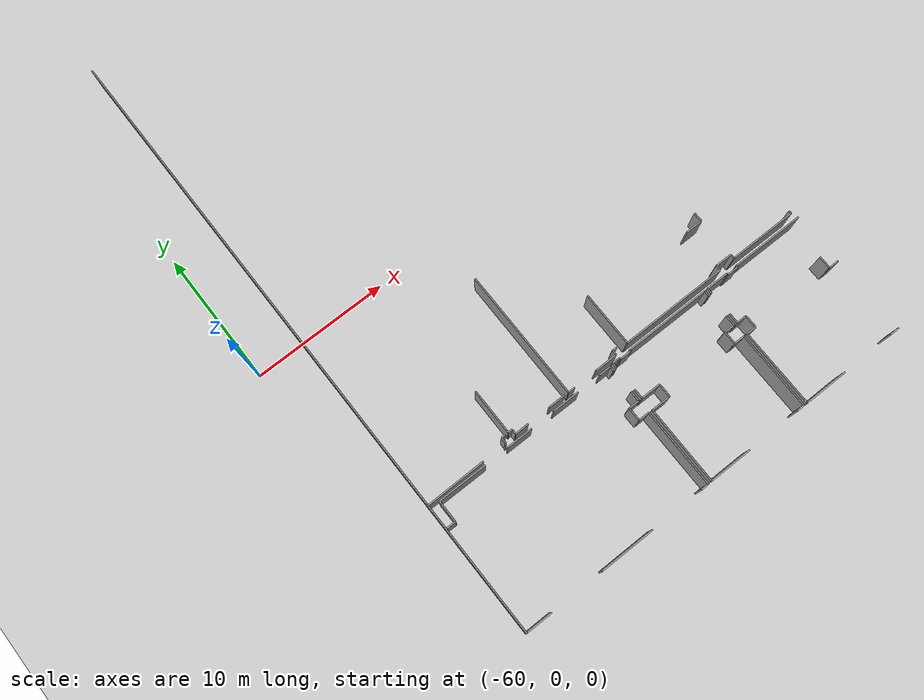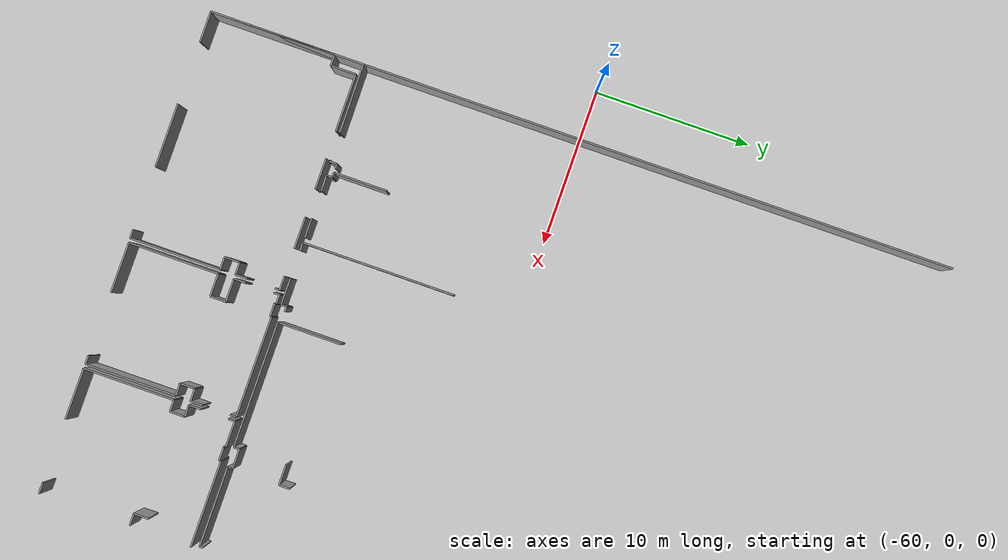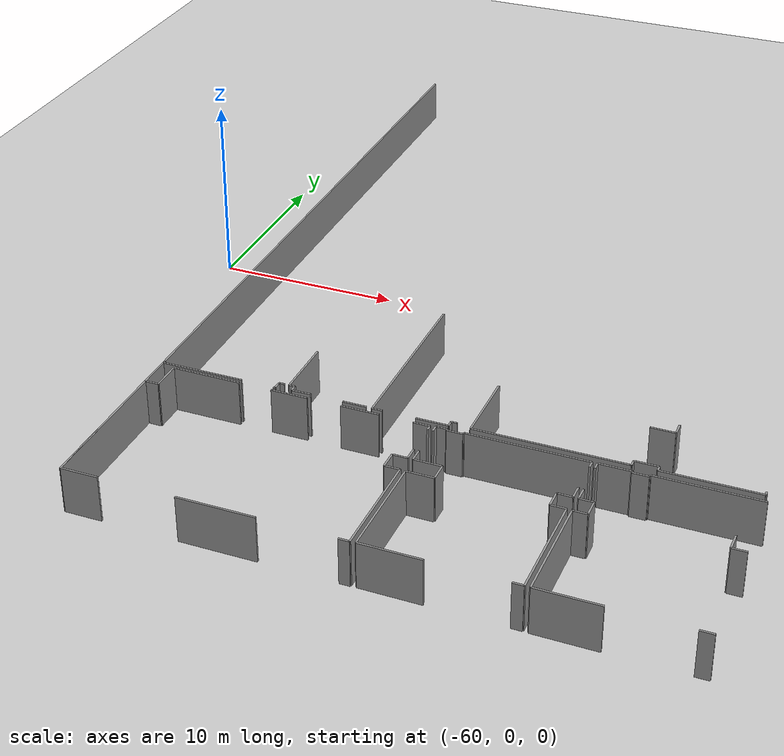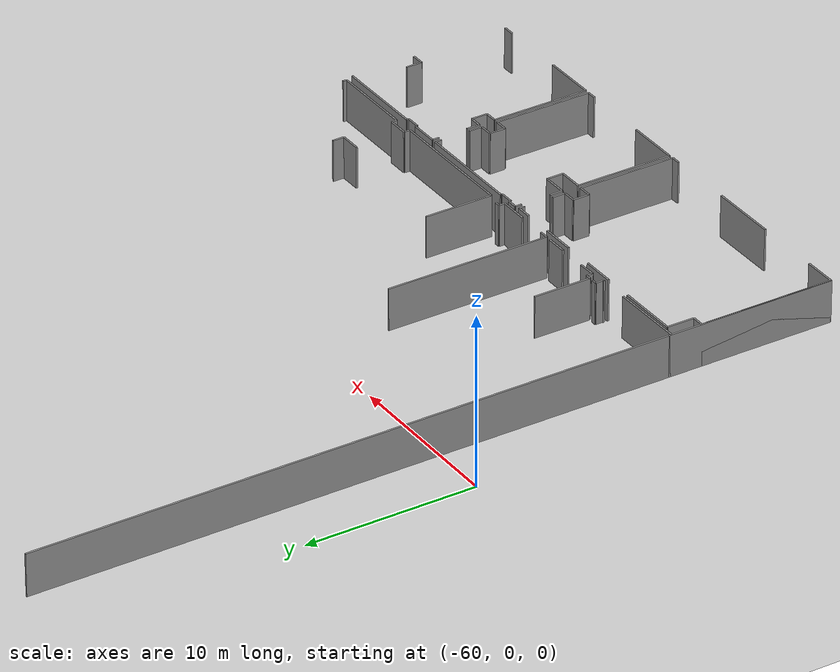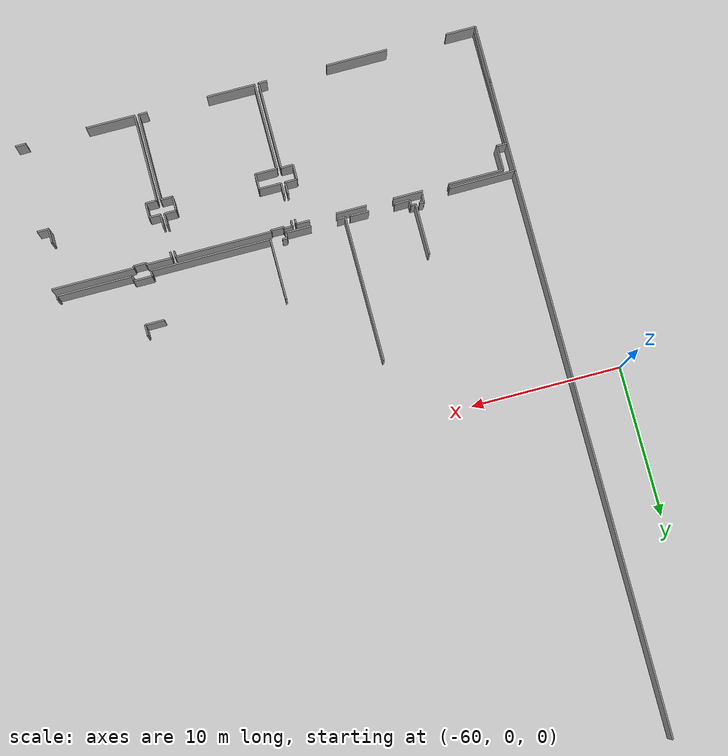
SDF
<sdf version="1.6">
 <world name="default">
  <model name="ground_plane">
   <static>1</static>
   <link name="link">
    <collision name="collision">
     <geometry><plane><normal>0 0 1</normal><size>100 100</size></plane></geometry>
     <surface><friction><ode><mu>100</mu><mu2>50</mu2></ode></friction></surface>
    </collision>
    <visual name="visual">
     <cast_shadows>0</cast_shadows>
     <geometry><plane><normal>0 0 1</normal><size>100 100</size></plane></geometry>
     <material>
      <script><uri>file://media/materials/scripts/gazebo.material</uri><name>Gazebo/Grey</name></script>
     </material>
    </visual>
   </link>
  </model>
  <model name="50057022">
   <static>1</static>
   <link name="Wall_190">
    <collision name="Wall_190_Collision">
     <geometry><box><size>0.184398025991 0.1 2.5</size></box></geometry>
     <pose>0.0921990129953 0 1.25 0 0 0</pose>
    </collision>
    <visual name="Wall_190_Visual">
     <pose>0.0921990129953 0 1.25 0 0 0</pose>
     <geometry><box><size>0.184398025991 0.1 2.5</size></box></geometry>
     <material>
      <script><uri>file://media/materials/scripts/gazebo.material</uri><name>Gazebo/Grey</name></script>
      <ambient>1 1 1 1</ambient>
     </material>
    </visual>
    <pose>0.0 -37.7790366692 0 0 0 1.57079632679</pose>
   </link>
   <link name="Wall_201">
    <collision name="Wall_201_Collision">
     <geometry><box><size>0.297571522355 0.1 2.5</size></box></geometry>
     <pose>0.148785761177 0 1.25 0 0 0</pose>
    </collision>
    <visual name="Wall_201_Visual">
     <pose>0.148785761177 0 1.25 0 0 0</pose>
     <geometry><box><size>0.297571522355 0.1 2.5</size></box></geometry>
     <material>
      <script><uri>file://media/materials/scripts/gazebo.material</uri><name>Gazebo/Grey</name></script>
      <ambient>1 1 1 1</ambient>
     </material>
    </visual>
    <pose>6.54454574719 -37.281098632 0 0 0 3.14159265359</pose>
   </link>
   <link name="Wall_202">
    <collision name="Wall_202_Collision">
     <geometry><box><size>0.462832708535 0.1 2.5</size></box></geometry>
     <pose>0.231416354267 0 1.25 0 0 0</pose>
    </collision>
    <visual name="Wall_202_Visual">
     <pose>0.231416354267 0 1.25 0 0 0</pose>
     <geometry><box><size>0.462832708535 0.1 2.5</size></box></geometry>
     <material>
      <script><uri>file://media/materials/scripts/gazebo.material</uri><name>Gazebo/Grey</name></script>
      <ambient>1 1 1 1</ambient>
     </material>
    </visual>
    <pose>6.24697422483 -37.281098632 0 0 0 -1.57079632679</pose>
   </link>
   <link name="Wall_203">
    <collision name="Wall_203_Collision">
     <geometry><box><size>0.0880801567447 0.1 2.5</size></box></geometry>
     <pose>0.0440400783723 0 1.25 0 0 0</pose>
    </collision>
    <visual name="Wall_203_Visual">
     <pose>0.0440400783723 0 1.25 0 0 0</pose>
     <geometry><box><size>0.0880801567447 0.1 2.5</size></box></geometry>
     <material>
      <script><uri>file://media/materials/scripts/gazebo.material</uri><name>Gazebo/Grey</name></script>
      <ambient>1 1 1 1</ambient>
     </material>
    </visual>
    <pose>6.24697422483 -37.7439313406 0 0 0 3.14159265359</pose>
   </link>
   <link name="Wall_204">
    <collision name="Wall_204_Collision">
     <geometry><box><size>4.40680908152 0.1 2.5</size></box></geometry>
     <pose>2.20340454076 0 1.25 0 0 0</pose>
    </collision>
    <visual name="Wall_204_Visual">
     <pose>2.20340454076 0 1.25 0 0 0</pose>
     <geometry><box><size>4.40680908152 0.1 2.5</size></box></geometry>
     <material>
      <script><uri>file://media/materials/scripts/gazebo.material</uri><name>Gazebo/Grey</name></script>
      <ambient>1 1 1 1</ambient>
     </material>
    </visual>
    <pose>4.40666925204 -37.7439313406 0 0 0 -3.13362641332</pose>
   </link>
   <link name="Wall_205">
    <collision name="Wall_205_Collision">
     <geometry><box><size>0.367528711596 0.1 2.5</size></box></geometry>
     <pose>0.183764355798 0 1.25 0 0 0</pose>
    </collision>
    <visual name="Wall_205_Visual">
     <pose>0.183764355798 0 1.25 0 0 0</pose>
     <geometry><box><size>0.367528711596 0.1 2.5</size></box></geometry>
     <material>
      <script><uri>file://media/materials/scripts/gazebo.material</uri><name>Gazebo/Grey</name></script>
      <ambient>1 1 1 1</ambient>
     </material>
    </visual>
    <pose>7.10661120785 -37.6469798011 0 0 0 1.57079632679</pose>
   </link>
   <link name="Wall_206">
    <collision name="Wall_206_Collision">
     <geometry><box><size>0.304161692356 0.1 2.5</size></box></geometry>
     <pose>0.152080846178 0 1.25 0 0 0</pose>
    </collision>
    <visual name="Wall_206_Visual">
     <pose>0.152080846178 0 1.25 0 0 0</pose>
     <geometry><box><size>0.304161692356 0.1 2.5</size></box></geometry>
     <material>
      <script><uri>file://media/materials/scripts/gazebo.material</uri><name>Gazebo/Grey</name></script>
      <ambient>1 1 1 1</ambient>
     </material>
    </visual>
    <pose>7.10661120785 -37.2794510895 0 0 0 3.14159265359</pose>
   </link>
   <link name="Wall_207">
    <collision name="Wall_207_Collision">
     <geometry><box><size>3.38379882746 0.1 2.5</size></box></geometry>
     <pose>1.69189941373 0 1.25 0 0 0</pose>
    </collision>
    <visual name="Wall_207_Visual">
     <pose>1.69189941373 0 1.25 0 0 0</pose>
     <geometry><box><size>3.38379882746 0.1 2.5</size></box></geometry>
     <material>
      <script><uri>file://media/materials/scripts/gazebo.material</uri><name>Gazebo/Grey</name></script>
      <ambient>1 1 1 1</ambient>
     </material>
    </visual>
    <pose>6.8024495155 -37.2794510895 0 0 0 1.57079632679</pose>
   </link>
   <link name="Wall_214">
    <collision name="Wall_214_Collision">
     <geometry><box><size>1.25149863001 0.1 2.5</size></box></geometry>
     <pose>0.625749315003 0 1.25 0 0 0</pose>
    </collision>
    <visual name="Wall_214_Visual">
     <pose>0.625749315003 0 1.25 0 0 0</pose>
     <geometry><box><size>1.25149863001 0.1 2.5</size></box></geometry>
     <material>
      <script><uri>file://media/materials/scripts/gazebo.material</uri><name>Gazebo/Grey</name></script>
      <ambient>1 1 1 1</ambient>
     </material>
    </visual>
    <pose>11.1114068239 -37.6208725892 0 0 0 3.14159265359</pose>
   </link>
   <link name="Wall_215">
    <collision name="Wall_215_Collision">
     <geometry><box><size>1.02687763863 0.1 2.5</size></box></geometry>
     <pose>0.513438819317 0 1.25 0 0 0</pose>
    </collision>
    <visual name="Wall_215_Visual">
     <pose>0.513438819317 0 1.25 0 0 0</pose>
     <geometry><box><size>1.02687763863 0.1 2.5</size></box></geometry>
     <material>
      <script><uri>file://media/materials/scripts/gazebo.material</uri><name>Gazebo/Grey</name></script>
      <ambient>1 1 1 1</ambient>
     </material>
    </visual>
    <pose>8.13315691955 -37.6208725892 0 0 0 -3.11616603579</pose>
   </link>
   <link name="Wall_216">
    <collision name="Wall_216_Collision">
     <geometry><box><size>9.66486450864 0.1 2.5</size></box></geometry>
     <pose>4.83243225432 0 1.25 0 0 0</pose>
    </collision>
    <visual name="Wall_216_Visual">
     <pose>4.83243225432 0 1.25 0 0 0</pose>
     <geometry><box><size>9.66486450864 0.1 2.5</size></box></geometry>
     <material>
      <script><uri>file://media/materials/scripts/gazebo.material</uri><name>Gazebo/Grey</name></script>
      <ambient>1 1 1 1</ambient>
     </material>
    </visual>
    <pose>11.4265943776 -37.6448253225 0 0 0 1.57079632679</pose>
   </link>
   <link name="Wall_225">
    <collision name="Wall_225_Collision">
     <geometry><box><size>0.316708362165 0.1 2.5</size></box></geometry>
     <pose>0.158354181083 0 1.25 0 0 0</pose>
    </collision>
    <visual name="Wall_225_Visual">
     <pose>0.158354181083 0 1.25 0 0 0</pose>
     <geometry><box><size>0.316708362165 0.1 2.5</size></box></geometry>
     <material>
      <script><uri>file://media/materials/scripts/gazebo.material</uri><name>Gazebo/Grey</name></script>
      <ambient>1 1 1 1</ambient>
     </material>
    </visual>
    <pose>15.7197099311 -37.2762827386 0 0 0 3.14159265359</pose>
   </link>
   <link name="Wall_226">
    <collision name="Wall_226_Collision">
     <geometry><box><size>0.351940424863 0.1 2.5</size></box></geometry>
     <pose>0.175970212432 0 1.25 0 0 0</pose>
    </collision>
    <visual name="Wall_226_Visual">
     <pose>0.175970212432 0 1.25 0 0 0</pose>
     <geometry><box><size>0.351940424863 0.1 2.5</size></box></geometry>
     <material>
      <script><uri>file://media/materials/scripts/gazebo.material</uri><name>Gazebo/Grey</name></script>
      <ambient>1 1 1 1</ambient>
     </material>
    </visual>
    <pose>15.403001569 -37.2762827386 0 0 0 -1.57079632679</pose>
   </link>
   <link name="Wall_227">
    <collision name="Wall_227_Collision">
     <geometry><box><size>1.69291328604 0.1 2.5</size></box></geometry>
     <pose>0.846456643018 0 1.25 0 0 0</pose>
    </collision>
    <visual name="Wall_227_Visual">
     <pose>0.846456643018 0 1.25 0 0 0</pose>
     <geometry><box><size>1.69291328604 0.1 2.5</size></box></geometry>
     <material>
      <script><uri>file://media/materials/scripts/gazebo.material</uri><name>Gazebo/Grey</name></script>
      <ambient>1 1 1 1</ambient>
     </material>
    </visual>
    <pose>15.403001569 -37.6282231634 0 0 0 3.14159265359</pose>
   </link>
   <link name="Wall_228">
    <collision name="Wall_228_Collision">
     <geometry><box><size>0.526334899493 0.1 2.5</size></box></geometry>
     <pose>0.263167449746 0 1.25 0 0 0</pose>
    </collision>
    <visual name="Wall_228_Visual">
     <pose>0.263167449746 0 1.25 0 0 0</pose>
     <geometry><box><size>0.526334899493 0.1 2.5</size></box></geometry>
     <material>
      <script><uri>file://media/materials/scripts/gazebo.material</uri><name>Gazebo/Grey</name></script>
      <ambient>1 1 1 1</ambient>
     </material>
    </visual>
    <pose>11.9526673713 -37.6282231634 0 0 0 -3.11004446371</pose>
   </link>
   <link name="Wall_229">
    <collision name="Wall_229_Collision">
     <geometry><box><size>7.97727405222 0.1 2.5</size></box></geometry>
     <pose>3.98863702611 0 1.25 0 0 0</pose>
    </collision>
    <visual name="Wall_229_Visual">
     <pose>3.98863702611 0 1.25 0 0 0</pose>
     <geometry><box><size>7.97727405222 0.1 2.5</size></box></geometry>
     <material>
      <script><uri>file://media/materials/scripts/gazebo.material</uri><name>Gazebo/Grey</name></script>
      <ambient>1 1 1 1</ambient>
     </material>
    </visual>
    <pose>0.0 -47.6000375133 0 0 0 1.57079632679</pose>
   </link>
   <link name="Wall_230">
    <collision name="Wall_230_Collision">
     <geometry><box><size>0.724031561845 0.1 2.5</size></box></geometry>
     <pose>0.362015780922 0 1.25 0 0 0</pose>
    </collision>
    <visual name="Wall_230_Visual">
     <pose>0.362015780922 0 1.25 0 0 0</pose>
     <geometry><box><size>0.724031561845 0.1 2.5</size></box></geometry>
     <material>
      <script><uri>file://media/materials/scripts/gazebo.material</uri><name>Gazebo/Grey</name></script>
      <ambient>1 1 1 1</ambient>
     </material>
    </visual>
    <pose>0.0 -39.6227634611 0 0 0 0.0</pose>
   </link>
   <link name="Wall_231">
    <collision name="Wall_231_Collision">
     <geometry><box><size>1.61915407564 0.1 2.5</size></box></geometry>
     <pose>0.80957703782 0 1.25 0 0 0</pose>
    </collision>
    <visual name="Wall_231_Visual">
     <pose>0.80957703782 0 1.25 0 0 0</pose>
     <geometry><box><size>1.61915407564 0.1 2.5</size></box></geometry>
     <material>
      <script><uri>file://media/materials/scripts/gazebo.material</uri><name>Gazebo/Grey</name></script>
      <ambient>1 1 1 1</ambient>
     </material>
    </visual>
    <pose>0.724031561845 -39.6227634611 0 0 0 1.57079632679</pose>
   </link>
   <link name="Wall_232">
    <collision name="Wall_232_Collision">
     <geometry><box><size>3.65779781865 0.1 2.5</size></box></geometry>
     <pose>1.82889890933 0 1.25 0 0 0</pose>
    </collision>
    <visual name="Wall_232_Visual">
     <pose>1.82889890933 0 1.25 0 0 0</pose>
     <geometry><box><size>3.65779781865 0.1 2.5</size></box></geometry>
     <material>
      <script><uri>file://media/materials/scripts/gazebo.material</uri><name>Gazebo/Grey</name></script>
      <ambient>1 1 1 1</ambient>
     </material>
    </visual>
    <pose>0.724031561845 -38.0036093854 0 0 0 0.0</pose>
   </link>
   <link name="Wall_233">
    <collision name="Wall_233_Collision">
     <geometry><box><size>1.96095577742 0.1 2.5</size></box></geometry>
     <pose>0.980477888712 0 1.25 0 0 0</pose>
    </collision>
    <visual name="Wall_233_Visual">
     <pose>0.980477888712 0 1.25 0 0 0</pose>
     <geometry><box><size>1.96095577742 0.1 2.5</size></box></geometry>
     <material>
      <script><uri>file://media/materials/scripts/gazebo.material</uri><name>Gazebo/Grey</name></script>
      <ambient>1 1 1 1</ambient>
     </material>
    </visual>
    <pose>6.15116329174 -38.0036093854 0 0 0 0.0</pose>
   </link>
   <link name="Wall_234">
    <collision name="Wall_234_Collision">
     <geometry><box><size>2.0277446157 0.1 2.5</size></box></geometry>
     <pose>1.01387230785 0 1.25 0 0 0</pose>
    </collision>
    <visual name="Wall_234_Visual">
     <pose>1.01387230785 0 1.25 0 0 0</pose>
     <geometry><box><size>2.0277446157 0.1 2.5</size></box></geometry>
     <material>
      <script><uri>file://media/materials/scripts/gazebo.material</uri><name>Gazebo/Grey</name></script>
      <ambient>1 1 1 1</ambient>
     </material>
    </visual>
    <pose>9.90743345829 -38.0036093854 0 0 0 0.0</pose>
   </link>
   <link name="Wall_235">
    <collision name="Wall_235_Collision">
     <geometry><box><size>0.888405609755 0.1 2.5</size></box></geometry>
     <pose>0.444202804878 0 1.25 0 0 0</pose>
    </collision>
    <visual name="Wall_235_Visual">
     <pose>0.444202804878 0 1.25 0 0 0</pose>
     <geometry><box><size>0.888405609755 0.1 2.5</size></box></geometry>
     <material>
      <script><uri>file://media/materials/scripts/gazebo.material</uri><name>Gazebo/Grey</name></script>
      <ambient>1 1 1 1</ambient>
     </material>
    </visual>
    <pose>13.7100882829 -38.0036093854 0 0 0 0.0</pose>
   </link>
   <link name="Wall_236">
    <collision name="Wall_236_Collision">
     <geometry><box><size>0.327734223513 0.1 2.5</size></box></geometry>
     <pose>0.163867111757 0 1.25 0 0 0</pose>
    </collision>
    <visual name="Wall_236_Visual">
     <pose>0.163867111757 0 1.25 0 0 0</pose>
     <geometry><box><size>0.327734223513 0.1 2.5</size></box></geometry>
     <material>
      <script><uri>file://media/materials/scripts/gazebo.material</uri><name>Gazebo/Grey</name></script>
      <ambient>1 1 1 1</ambient>
     </material>
    </visual>
    <pose>14.5984938927 -38.0036093854 0 0 0 -1.57079632679</pose>
   </link>
   <link name="Wall_237">
    <collision name="Wall_237_Collision">
     <geometry><box><size>0.760404230889 0.1 2.5</size></box></geometry>
     <pose>0.380202115445 0 1.25 0 0 0</pose>
    </collision>
    <visual name="Wall_237_Visual">
     <pose>0.380202115445 0 1.25 0 0 0</pose>
     <geometry><box><size>0.760404230889 0.1 2.5</size></box></geometry>
     <material>
      <script><uri>file://media/materials/scripts/gazebo.material</uri><name>Gazebo/Grey</name></script>
      <ambient>1 1 1 1</ambient>
     </material>
    </visual>
    <pose>14.5984938927 -40.08027334 0 0 0 -1.57079632679</pose>
   </link>
   <link name="Wall_238">
    <collision name="Wall_238_Collision">
     <geometry><box><size>0.787652049163 0.1 2.5</size></box></geometry>
     <pose>0.393826024581 0 1.25 0 0 0</pose>
    </collision>
    <visual name="Wall_238_Visual">
     <pose>0.393826024581 0 1.25 0 0 0</pose>
     <geometry><box><size>0.787652049163 0.1 2.5</size></box></geometry>
     <material>
      <script><uri>file://media/materials/scripts/gazebo.material</uri><name>Gazebo/Grey</name></script>
      <ambient>1 1 1 1</ambient>
     </material>
    </visual>
    <pose>14.5984938927 -40.8406775709 0 0 0 3.14159265359</pose>
   </link>
   <link name="Wall_239">
    <collision name="Wall_239_Collision">
     <geometry><box><size>0.975852096308 0.1 2.5</size></box></geometry>
     <pose>0.487926048154 0 1.25 0 0 0</pose>
    </collision>
    <visual name="Wall_239_Visual">
     <pose>0.487926048154 0 1.25 0 0 0</pose>
     <geometry><box><size>0.975852096308 0.1 2.5</size></box></geometry>
     <material>
      <script><uri>file://media/materials/scripts/gazebo.material</uri><name>Gazebo/Grey</name></script>
      <ambient>1 1 1 1</ambient>
     </material>
    </visual>
    <pose>13.8108418435 -40.8406775709 0 0 0 -1.57079632679</pose>
   </link>
   <link name="Wall_240">
    <collision name="Wall_240_Collision">
     <geometry><box><size>0.798424442434 0.1 2.5</size></box></geometry>
     <pose>0.399212221217 0 1.25 0 0 0</pose>
    </collision>
    <visual name="Wall_240_Visual">
     <pose>0.399212221217 0 1.25 0 0 0</pose>
     <geometry><box><size>0.798424442434 0.1 2.5</size></box></geometry>
     <material>
      <script><uri>file://media/materials/scripts/gazebo.material</uri><name>Gazebo/Grey</name></script>
      <ambient>1 1 1 1</ambient>
     </material>
    </visual>
    <pose>13.8108418435 -41.8165296672 0 0 0 0.0</pose>
   </link>
   <link name="Wall_241">
    <collision name="Wall_241_Collision">
     <geometry><box><size>5.7835078461 0.1 2.5</size></box></geometry>
     <pose>2.89175392305 0 1.25 0 0 0</pose>
    </collision>
    <visual name="Wall_241_Visual">
     <pose>2.89175392305 0 1.25 0 0 0</pose>
     <geometry><box><size>5.7835078461 0.1 2.5</size></box></geometry>
     <material>
      <script><uri>file://media/materials/scripts/gazebo.material</uri><name>Gazebo/Grey</name></script>
      <ambient>1 1 1 1</ambient>
     </material>
    </visual>
    <pose>14.609266286 -41.8165296672 0 0 0 -1.57079632679</pose>
   </link>
   <link name="Wall_242">
    <collision name="Wall_242_Collision">
     <geometry><box><size>0.559530779896 0.1 2.5</size></box></geometry>
     <pose>0.279765389948 0 1.25 0 0 0</pose>
    </collision>
    <visual name="Wall_242_Visual">
     <pose>0.279765389948 0 1.25 0 0 0</pose>
     <geometry><box><size>0.559530779896 0.1 2.5</size></box></geometry>
     <material>
      <script><uri>file://media/materials/scripts/gazebo.material</uri><name>Gazebo/Grey</name></script>
      <ambient>1 1 1 1</ambient>
     </material>
    </visual>
    <pose>14.609266286 -47.6000375133 0 0 0 3.14159265359</pose>
   </link>
   <link name="Wall_243">
    <collision name="Wall_243_Collision">
     <geometry><box><size>4.06626162468 0.1 2.5</size></box></geometry>
     <pose>2.03313081234 0 1.25 0 0 0</pose>
    </collision>
    <visual name="Wall_243_Visual">
     <pose>2.03313081234 0 1.25 0 0 0</pose>
     <geometry><box><size>4.06626162468 0.1 2.5</size></box></geometry>
     <material>
      <script><uri>file://media/materials/scripts/gazebo.material</uri><name>Gazebo/Grey</name></script>
      <ambient>1 1 1 1</ambient>
     </material>
    </visual>
    <pose>10.0417715391 -47.6000375133 0 0 0 3.14159265359</pose>
   </link>
   <link name="Wall_244">
    <collision name="Wall_244_Collision">
     <geometry><box><size>1.96754594743 0.1 2.5</size></box></geometry>
     <pose>0.983772973713 0 1.25 0 0 0</pose>
    </collision>
    <visual name="Wall_244_Visual">
     <pose>0.983772973713 0 1.25 0 0 0</pose>
     <geometry><box><size>1.96754594743 0.1 2.5</size></box></geometry>
     <material>
      <script><uri>file://media/materials/scripts/gazebo.material</uri><name>Gazebo/Grey</name></script>
      <ambient>1 1 1 1</ambient>
     </material>
    </visual>
    <pose>1.96754594743 -47.6000375133 0 0 0 3.14159265359</pose>
   </link>
   <link name="Wall_245">
    <collision name="Wall_245_Collision">
     <geometry><box><size>5.73053301802 0.1 2.5</size></box></geometry>
     <pose>2.86526650901 0 1.25 0 0 0</pose>
    </collision>
    <visual name="Wall_245_Visual">
     <pose>2.86526650901 0 1.25 0 0 0</pose>
     <geometry><box><size>5.73053301802 0.1 2.5</size></box></geometry>
     <material>
      <script><uri>file://media/materials/scripts/gazebo.material</uri><name>Gazebo/Grey</name></script>
      <ambient>1 1 1 1</ambient>
     </material>
    </visual>
    <pose>14.8869405643 -47.5740570354 0 0 0 1.57079632679</pose>
   </link>
   <link name="Wall_246">
    <collision name="Wall_246_Collision">
     <geometry><box><size>1.44375416638 0.1 2.5</size></box></geometry>
     <pose>0.721877083191 0 1.25 0 0 0</pose>
    </collision>
    <visual name="Wall_246_Visual">
     <pose>0.721877083191 0 1.25 0 0 0</pose>
     <geometry><box><size>1.44375416638 0.1 2.5</size></box></geometry>
     <material>
      <script><uri>file://media/materials/scripts/gazebo.material</uri><name>Gazebo/Grey</name></script>
      <ambient>1 1 1 1</ambient>
     </material>
    </visual>
    <pose>14.8869405643 -41.8435240174 0 0 0 0.0</pose>
   </link>
   <link name="Wall_247">
    <collision name="Wall_247_Collision">
     <geometry><box><size>1.0028464465 0.1 2.5</size></box></geometry>
     <pose>0.501423223252 0 1.25 0 0 0</pose>
    </collision>
    <visual name="Wall_247_Visual">
     <pose>0.501423223252 0 1.25 0 0 0</pose>
     <geometry><box><size>1.0028464465 0.1 2.5</size></box></geometry>
     <material>
      <script><uri>file://media/materials/scripts/gazebo.material</uri><name>Gazebo/Grey</name></script>
      <ambient>1 1 1 1</ambient>
     </material>
    </visual>
    <pose>16.3306947307 -41.8435240174 0 0 0 1.57079632679</pose>
   </link>
   <link name="Wall_248">
    <collision name="Wall_248_Collision">
     <geometry><box><size>1.46580588908 0.1 2.5</size></box></geometry>
     <pose>0.732902944539 0 1.25 0 0 0</pose>
    </collision>
    <visual name="Wall_248_Visual">
     <pose>0.732902944539 0 1.25 0 0 0</pose>
     <geometry><box><size>1.46580588908 0.1 2.5</size></box></geometry>
     <material>
      <script><uri>file://media/materials/scripts/gazebo.material</uri><name>Gazebo/Grey</name></script>
      <ambient>1 1 1 1</ambient>
     </material>
    </visual>
    <pose>16.3306947307 -40.8406775709 0 0 0 3.14159265359</pose>
   </link>
   <link name="Wall_249">
    <collision name="Wall_249_Collision">
     <geometry><box><size>0.749378369541 0.1 2.5</size></box></geometry>
     <pose>0.374689184771 0 1.25 0 0 0</pose>
    </collision>
    <visual name="Wall_249_Visual">
     <pose>0.374689184771 0 1.25 0 0 0</pose>
     <geometry><box><size>0.749378369541 0.1 2.5</size></box></geometry>
     <material>
      <script><uri>file://media/materials/scripts/gazebo.material</uri><name>Gazebo/Grey</name></script>
      <ambient>1 1 1 1</ambient>
     </material>
    </visual>
    <pose>14.8648888416 -40.8406775709 0 0 0 1.57079632679</pose>
   </link>
   <link name="Wall_250">
    <collision name="Wall_250_Collision">
     <geometry><box><size>0.392875519293 0.1 2.5</size></box></geometry>
     <pose>0.196437759646 0 1.25 0 0 0</pose>
    </collision>
    <visual name="Wall_250_Visual">
     <pose>0.196437759646 0 1.25 0 0 0</pose>
     <geometry><box><size>0.392875519293 0.1 2.5</size></box></geometry>
     <material>
      <script><uri>file://media/materials/scripts/gazebo.material</uri><name>Gazebo/Grey</name></script>
      <ambient>1 1 1 1</ambient>
     </material>
    </visual>
    <pose>14.8648888416 -38.3186702051 0 0 0 1.57079632679</pose>
   </link>
   <link name="Wall_251">
    <collision name="Wall_251_Collision">
     <geometry><box><size>0.580822098361 0.1 2.5</size></box></geometry>
     <pose>0.29041104918 0 1.25 0 0 0</pose>
    </collision>
    <visual name="Wall_251_Visual">
     <pose>0.29041104918 0 1.25 0 0 0</pose>
     <geometry><box><size>0.580822098361 0.1 2.5</size></box></geometry>
     <material>
      <script><uri>file://media/materials/scripts/gazebo.material</uri><name>Gazebo/Grey</name></script>
      <ambient>1 1 1 1</ambient>
     </material>
    </visual>
    <pose>14.8648888416 -37.9257946858 0 0 0 0.0</pose>
   </link>
   <link name="Wall_252">
    <collision name="Wall_252_Collision">
     <geometry><box><size>0.0993594861695 0.1 2.5</size></box></geometry>
     <pose>0.0496797430848 0 1.25 0 0 0</pose>
    </collision>
    <visual name="Wall_252_Visual">
     <pose>0.0496797430848 0 1.25 0 0 0</pose>
     <geometry><box><size>0.0993594861695 0.1 2.5</size></box></geometry>
     <material>
      <script><uri>file://media/materials/scripts/gazebo.material</uri><name>Gazebo/Grey</name></script>
      <ambient>1 1 1 1</ambient>
     </material>
    </visual>
    <pose>15.4457109399 -37.9257946858 0 0 0 -1.57079632679</pose>
   </link>
   <link name="Wall_253">
    <collision name="Wall_253_Collision">
     <geometry><box><size>0.843541760133 0.1 2.5</size></box></geometry>
     <pose>0.421770880067 0 1.25 0 0 0</pose>
    </collision>
    <visual name="Wall_253_Visual">
     <pose>0.421770880067 0 1.25 0 0 0</pose>
     <geometry><box><size>0.843541760133 0.1 2.5</size></box></geometry>
     <material>
      <script><uri>file://media/materials/scripts/gazebo.material</uri><name>Gazebo/Grey</name></script>
      <ambient>1 1 1 1</ambient>
     </material>
    </visual>
    <pose>15.4457109399 -38.025154172 0 0 0 0.0</pose>
   </link>
   <link name="Wall_254">
    <collision name="Wall_254_Collision">
     <geometry><box><size>0.0941633905918 0.1 2.5</size></box></geometry>
     <pose>0.0470816952959 0 1.25 0 0 0</pose>
    </collision>
    <visual name="Wall_254_Visual">
     <pose>0.0470816952959 0 1.25 0 0 0</pose>
     <geometry><box><size>0.0941633905918 0.1 2.5</size></box></geometry>
     <material>
      <script><uri>file://media/materials/scripts/gazebo.material</uri><name>Gazebo/Grey</name></script>
      <ambient>1 1 1 1</ambient>
     </material>
    </visual>
    <pose>16.2892527001 -38.025154172 0 0 0 1.57079632679</pose>
   </link>
   <link name="Wall_255">
    <collision name="Wall_255_Collision">
     <geometry><box><size>6.38384698639 0.1 2.5</size></box></geometry>
     <pose>3.1919234932 0 1.25 0 0 0</pose>
    </collision>
    <visual name="Wall_255_Visual">
     <pose>3.1919234932 0 1.25 0 0 0</pose>
     <geometry><box><size>6.38384698639 0.1 2.5</size></box></geometry>
     <material>
      <script><uri>file://media/materials/scripts/gazebo.material</uri><name>Gazebo/Grey</name></script>
      <ambient>1 1 1 1</ambient>
     </material>
    </visual>
    <pose>16.2892527001 -37.9309907814 0 0 0 0.0</pose>
   </link>
   <link name="Wall_256">
    <collision name="Wall_256_Collision">
     <geometry><box><size>0.398578551024 0.1 2.5</size></box></geometry>
     <pose>0.199289275512 0 1.25 0 0 0</pose>
    </collision>
    <visual name="Wall_256_Visual">
     <pose>0.199289275512 0 1.25 0 0 0</pose>
     <geometry><box><size>0.398578551024 0.1 2.5</size></box></geometry>
     <material>
      <script><uri>file://media/materials/scripts/gazebo.material</uri><name>Gazebo/Grey</name></script>
      <ambient>1 1 1 1</ambient>
     </material>
    </visual>
    <pose>22.6730996865 -37.9309907814 0 0 0 -1.57079632679</pose>
   </link>
   <link name="Wall_257">
    <collision name="Wall_257_Collision">
     <geometry><box><size>0.782455953585 0.1 2.5</size></box></geometry>
     <pose>0.391227976792 0 1.25 0 0 0</pose>
    </collision>
    <visual name="Wall_257_Visual">
     <pose>0.391227976792 0 1.25 0 0 0</pose>
     <geometry><box><size>0.782455953585 0.1 2.5</size></box></geometry>
     <material>
      <script><uri>file://media/materials/scripts/gazebo.material</uri><name>Gazebo/Grey</name></script>
      <ambient>1 1 1 1</ambient>
     </material>
    </visual>
    <pose>22.6730996865 -40.0692474786 0 0 0 -1.57079632679</pose>
   </link>
   <link name="Wall_258">
    <collision name="Wall_258_Collision">
     <geometry><box><size>0.788158985317 0.1 2.5</size></box></geometry>
     <pose>0.394079492658 0 1.25 0 0 0</pose>
    </collision>
    <visual name="Wall_258_Visual">
     <pose>0.394079492658 0 1.25 0 0 0</pose>
     <geometry><box><size>0.788158985317 0.1 2.5</size></box></geometry>
     <material>
      <script><uri>file://media/materials/scripts/gazebo.material</uri><name>Gazebo/Grey</name></script>
      <ambient>1 1 1 1</ambient>
     </material>
    </visual>
    <pose>22.6730996865 -40.8517034322 0 0 0 3.14159265359</pose>
   </link>
   <link name="Wall_259">
    <collision name="Wall_259_Collision">
     <geometry><box><size>0.947717139765 0.1 2.5</size></box></geometry>
     <pose>0.473858569882 0 1.25 0 0 0</pose>
    </collision>
    <visual name="Wall_259_Visual">
     <pose>0.473858569882 0 1.25 0 0 0</pose>
     <geometry><box><size>0.947717139765 0.1 2.5</size></box></geometry>
     <material>
      <script><uri>file://media/materials/scripts/gazebo.material</uri><name>Gazebo/Grey</name></script>
      <ambient>1 1 1 1</ambient>
     </material>
    </visual>
    <pose>21.8849407011 -40.8517034322 0 0 0 -1.57079632679</pose>
   </link>
   <link name="Wall_260">
    <collision name="Wall_260_Collision">
     <geometry><box><size>0.782455953585 0.1 2.5</size></box></geometry>
     <pose>0.391227976792 0 1.25 0 0 0</pose>
    </collision>
    <visual name="Wall_260_Visual">
     <pose>0.391227976792 0 1.25 0 0 0</pose>
     <geometry><box><size>0.782455953585 0.1 2.5</size></box></geometry>
     <material>
      <script><uri>file://media/materials/scripts/gazebo.material</uri><name>Gazebo/Grey</name></script>
      <ambient>1 1 1 1</ambient>
     </material>
    </visual>
    <pose>21.8849407011 -41.799420572 0 0 0 0.0</pose>
   </link>
   <link name="Wall_261">
    <collision name="Wall_261_Collision">
     <geometry><box><size>5.78566232476 0.1 2.5</size></box></geometry>
     <pose>2.89283116238 0 1.25 0 0 0</pose>
    </collision>
    <visual name="Wall_261_Visual">
     <pose>2.89283116238 0 1.25 0 0 0</pose>
     <geometry><box><size>5.78566232476 0.1 2.5</size></box></geometry>
     <material>
      <script><uri>file://media/materials/scripts/gazebo.material</uri><name>Gazebo/Grey</name></script>
      <ambient>1 1 1 1</ambient>
     </material>
    </visual>
    <pose>22.6673966547 -41.799420572 0 0 0 -1.57079632679</pose>
   </link>
   <link name="Wall_262">
    <collision name="Wall_262_Collision">
     <geometry><box><size>0.562065460666 0.1 2.5</size></box></geometry>
     <pose>0.281032730333 0 1.25 0 0 0</pose>
    </collision>
    <visual name="Wall_262_Visual">
     <pose>0.281032730333 0 1.25 0 0 0</pose>
     <geometry><box><size>0.562065460666 0.1 2.5</size></box></geometry>
     <material>
      <script><uri>file://media/materials/scripts/gazebo.material</uri><name>Gazebo/Grey</name></script>
      <ambient>1 1 1 1</ambient>
     </material>
    </visual>
    <pose>22.6673966547 -47.5850828967 0 0 0 3.14159265359</pose>
   </link>
   <link name="Wall_263">
    <collision name="Wall_263_Collision">
     <geometry><box><size>3.19599800152 0.1 2.5</size></box></geometry>
     <pose>1.59799900076 0 1.25 0 0 0</pose>
    </collision>
    <visual name="Wall_263_Visual">
     <pose>1.59799900076 0 1.25 0 0 0</pose>
     <geometry><box><size>3.19599800152 0.1 2.5</size></box></geometry>
     <material>
      <script><uri>file://media/materials/scripts/gazebo.material</uri><name>Gazebo/Grey</name></script>
      <ambient>1 1 1 1</ambient>
     </material>
    </visual>
    <pose>18.0829195467 -47.5850828967 0 0 0 3.13814275055</pose>
   </link>
   <link name="Wall_264">
    <collision name="Wall_264_Collision">
     <geometry><box><size>5.77881868668 0.1 2.5</size></box></geometry>
     <pose>2.88940934334 0 1.25 0 0 0</pose>
    </collision>
    <visual name="Wall_264_Visual">
     <pose>2.88940934334 0 1.25 0 0 0</pose>
     <geometry><box><size>5.77881868668 0.1 2.5</size></box></geometry>
     <material>
      <script><uri>file://media/materials/scripts/gazebo.material</uri><name>Gazebo/Grey</name></script>
      <ambient>1 1 1 1</ambient>
     </material>
    </visual>
    <pose>22.9346787419 -47.5937008114 0 0 0 1.57079632679</pose>
   </link>
   <link name="Wall_265">
    <collision name="Wall_265_Collision">
     <geometry><box><size>0.738352508193 0.1 2.5</size></box></geometry>
     <pose>0.369176254097 0 1.25 0 0 0</pose>
    </collision>
    <visual name="Wall_265_Visual">
     <pose>0.369176254097 0 1.25 0 0 0</pose>
     <geometry><box><size>0.738352508193 0.1 2.5</size></box></geometry>
     <material>
      <script><uri>file://media/materials/scripts/gazebo.material</uri><name>Gazebo/Grey</name></script>
      <ambient>1 1 1 1</ambient>
     </material>
    </visual>
    <pose>22.9346787419 -41.8148821247 0 0 0 0.0</pose>
   </link>
   <link name="Wall_266">
    <collision name="Wall_266_Collision">
     <geometry><box><size>0.95646178842 0.1 2.5</size></box></geometry>
     <pose>0.47823089421 0 1.25 0 0 0</pose>
    </collision>
    <visual name="Wall_266_Visual">
     <pose>0.47823089421 0 1.25 0 0 0</pose>
     <geometry><box><size>0.95646178842 0.1 2.5</size></box></geometry>
     <material>
      <script><uri>file://media/materials/scripts/gazebo.material</uri><name>Gazebo/Grey</name></script>
      <ambient>1 1 1 1</ambient>
     </material>
    </visual>
    <pose>23.6730312501 -41.8148821247 0 0 0 1.57079632679</pose>
   </link>
   <link name="Wall_267">
    <collision name="Wall_267_Collision">
     <geometry><box><size>0.739112912424 0.1 2.5</size></box></geometry>
     <pose>0.369556456212 0 1.25 0 0 0</pose>
    </collision>
    <visual name="Wall_267_Visual">
     <pose>0.369556456212 0 1.25 0 0 0</pose>
     <geometry><box><size>0.739112912424 0.1 2.5</size></box></geometry>
     <material>
      <script><uri>file://media/materials/scripts/gazebo.material</uri><name>Gazebo/Grey</name></script>
      <ambient>1 1 1 1</ambient>
     </material>
    </visual>
    <pose>23.6730312501 -40.8584203363 0 0 0 3.14159265359</pose>
   </link>
   <link name="Wall_268">
    <collision name="Wall_268_Collision">
     <geometry><box><size>0.769022145506 0.1 2.5</size></box></geometry>
     <pose>0.384511072753 0 1.25 0 0 0</pose>
    </collision>
    <visual name="Wall_268_Visual">
     <pose>0.384511072753 0 1.25 0 0 0</pose>
     <geometry><box><size>0.769022145506 0.1 2.5</size></box></geometry>
     <material>
      <script><uri>file://media/materials/scripts/gazebo.material</uri><name>Gazebo/Grey</name></script>
      <ambient>1 1 1 1</ambient>
     </material>
    </visual>
    <pose>22.9339183377 -40.8584203363 0 0 0 1.57079632679</pose>
   </link>
   <link name="Wall_269">
    <collision name="Wall_269_Collision">
     <geometry><box><size>0.412012359103 0.1 2.5</size></box></geometry>
     <pose>0.206006179552 0 1.25 0 0 0</pose>
    </collision>
    <visual name="Wall_269_Visual">
     <pose>0.206006179552 0 1.25 0 0 0</pose>
     <geometry><box><size>0.412012359103 0.1 2.5</size></box></geometry>
     <material>
      <script><uri>file://media/materials/scripts/gazebo.material</uri><name>Gazebo/Grey</name></script>
      <ambient>1 1 1 1</ambient>
     </material>
    </visual>
    <pose>22.9339183377 -38.3366664385 0 0 0 1.57079632679</pose>
   </link>
   <link name="Wall_270">
    <collision name="Wall_270_Collision">
     <geometry><box><size>1.67390318026 0.1 2.5</size></box></geometry>
     <pose>0.836951590132 0 1.25 0 0 0</pose>
    </collision>
    <visual name="Wall_270_Visual">
     <pose>0.836951590132 0 1.25 0 0 0</pose>
     <geometry><box><size>1.67390318026 0.1 2.5</size></box></geometry>
     <material>
      <script><uri>file://media/materials/scripts/gazebo.material</uri><name>Gazebo/Grey</name></script>
      <ambient>1 1 1 1</ambient>
     </material>
    </visual>
    <pose>22.9339183377 -37.9246540794 0 0 0 0.0</pose>
   </link>
   <link name="Wall_271">
    <collision name="Wall_271_Collision">
     <geometry><box><size>0.107723932709 0.1 2.5</size></box></geometry>
     <pose>0.0538619663547 0 1.25 0 0 0</pose>
    </collision>
    <visual name="Wall_271_Visual">
     <pose>0.0538619663547 0 1.25 0 0 0</pose>
     <geometry><box><size>0.107723932709 0.1 2.5</size></box></geometry>
     <material>
      <script><uri>file://media/materials/scripts/gazebo.material</uri><name>Gazebo/Grey</name></script>
      <ambient>1 1 1 1</ambient>
     </material>
    </visual>
    <pose>24.6078215179 -37.9246540794 0 0 0 -1.57079632679</pose>
   </link>
   <link name="Wall_272">
    <collision name="Wall_272_Collision">
     <geometry><box><size>0.847723983403 0.1 2.5</size></box></geometry>
     <pose>0.423861991701 0 1.25 0 0 0</pose>
    </collision>
    <visual name="Wall_272_Visual">
     <pose>0.423861991701 0 1.25 0 0 0</pose>
     <geometry><box><size>0.847723983403 0.1 2.5</size></box></geometry>
     <material>
      <script><uri>file://media/materials/scripts/gazebo.material</uri><name>Gazebo/Grey</name></script>
      <ambient>1 1 1 1</ambient>
     </material>
    </visual>
    <pose>24.6078215179 -38.0323780122 0 0 0 0.0</pose>
   </link>
   <link name="Wall_273">
    <collision name="Wall_273_Collision">
     <geometry><box><size>0.123185485404 0.1 2.5</size></box></geometry>
     <pose>0.061592742702 0 1.25 0 0 0</pose>
    </collision>
    <visual name="Wall_273_Visual">
     <pose>0.061592742702 0 1.25 0 0 0</pose>
     <geometry><box><size>0.123185485404 0.1 2.5</size></box></geometry>
     <material>
      <script><uri>file://media/materials/scripts/gazebo.material</uri><name>Gazebo/Grey</name></script>
      <ambient>1 1 1 1</ambient>
     </material>
    </visual>
    <pose>25.4555455013 -38.0323780122 0 0 0 1.57079632679</pose>
   </link>
   <link name="Wall_274">
    <collision name="Wall_274_Collision">
     <geometry><box><size>5.47072823913 0.1 2.5</size></box></geometry>
     <pose>2.73536411957 0 1.25 0 0 0</pose>
    </collision>
    <visual name="Wall_274_Visual">
     <pose>2.73536411957 0 1.25 0 0 0</pose>
     <geometry><box><size>5.47072823913 0.1 2.5</size></box></geometry>
     <material>
      <script><uri>file://media/materials/scripts/gazebo.material</uri><name>Gazebo/Grey</name></script>
      <ambient>1 1 1 1</ambient>
     </material>
    </visual>
    <pose>25.4555455013 -37.9091925267 0 0 0 0.0</pose>
   </link>
   <link name="Wall_280">
    <collision name="Wall_280_Collision">
     <geometry><box><size>0.938592288994 0.1 2.5</size></box></geometry>
     <pose>0.469296144497 0 1.25 0 0 0</pose>
    </collision>
    <visual name="Wall_280_Visual">
     <pose>0.469296144497 0 1.25 0 0 0</pose>
     <geometry><box><size>0.938592288994 0.1 2.5</size></box></geometry>
     <material>
      <script><uri>file://media/materials/scripts/gazebo.material</uri><name>Gazebo/Grey</name></script>
      <ambient>1 1 1 1</ambient>
     </material>
    </visual>
    <pose>30.1523089674 -40.8629827616 0 0 0 -1.57079632679</pose>
   </link>
   <link name="Wall_281">
    <collision name="Wall_281_Collision">
     <geometry><box><size>0.754194263004 0.1 2.5</size></box></geometry>
     <pose>0.377097131502 0 1.25 0 0 0</pose>
    </collision>
    <visual name="Wall_281_Visual">
     <pose>0.377097131502 0 1.25 0 0 0</pose>
     <geometry><box><size>0.754194263004 0.1 2.5</size></box></geometry>
     <material>
      <script><uri>file://media/materials/scripts/gazebo.material</uri><name>Gazebo/Grey</name></script>
      <ambient>1 1 1 1</ambient>
     </material>
    </visual>
    <pose>30.1523089674 -41.8015750506 0 0 0 0.0</pose>
   </link>
   <link name="Wall_283">
    <collision name="Wall_283_Collision">
     <geometry><box><size>0.704007583765 0.1 2.5</size></box></geometry>
     <pose>0.352003791882 0 1.25 0 0 0</pose>
    </collision>
    <visual name="Wall_283_Visual">
     <pose>0.352003791882 0 1.25 0 0 0</pose>
     <geometry><box><size>0.704007583765 0.1 2.5</size></box></geometry>
     <material>
      <script><uri>file://media/materials/scripts/gazebo.material</uri><name>Gazebo/Grey</name></script>
      <ambient>1 1 1 1</ambient>
     </material>
    </visual>
    <pose>30.9065032305 -47.6007979175 0 0 0 3.14159265359</pose>
   </link>
   <link name="Wall_284">
    <collision name="Wall_284_Collision">
     <geometry><box><size>3.24528628372 0.1 2.5</size></box></geometry>
     <pose>1.62264314186 0 1.25 0 0 0</pose>
    </collision>
    <visual name="Wall_284_Visual">
     <pose>1.62264314186 0 1.25 0 0 0</pose>
     <geometry><box><size>3.24528628372 0.1 2.5</size></box></geometry>
     <material>
      <script><uri>file://media/materials/scripts/gazebo.material</uri><name>Gazebo/Grey</name></script>
      <ambient>1 1 1 1</ambient>
     </material>
    </visual>
    <pose>26.1799572653 -47.6007979175 0 0 0 3.13940575506</pose>
   </link>
   <link name="Wall_285">
    <collision name="Wall_285_Collision">
     <geometry><box><size>4.0314097641 0.1 2.5</size></box></geometry>
     <pose>2.01570488205 0 1.25 0 0 0</pose>
    </collision>
    <visual name="Wall_285_Visual">
     <pose>2.01570488205 0 1.25 0 0 0</pose>
     <geometry><box><size>4.0314097641 0.1 2.5</size></box></geometry>
     <material>
      <script><uri>file://media/materials/scripts/gazebo.material</uri><name>Gazebo/Grey</name></script>
      <ambient>1 1 1 1</ambient>
     </material>
    </visual>
    <pose>16.4690883007 -37.4708194876 0 0 0 1.57079632679</pose>
   </link>
   <link name="Wall_288">
    <collision name="Wall_288_Collision">
     <geometry><box><size>1.28001378866 0.1 2.5</size></box></geometry>
     <pose>0.640006894332 0 1.25 0 0 0</pose>
    </collision>
    <visual name="Wall_288_Visual">
     <pose>0.640006894332 0 1.25 0 0 0</pose>
     <geometry><box><size>1.28001378866 0.1 2.5</size></box></geometry>
     <material>
      <script><uri>file://media/materials/scripts/gazebo.material</uri><name>Gazebo/Grey</name></script>
      <ambient>1 1 1 1</ambient>
     </material>
    </visual>
    <pose>24.3931340567 -34.1364469352 0 0 0 0.0</pose>
   </link>
   <link name="Wall_289">
    <collision name="Wall_289_Collision">
     <geometry><box><size>0.697037211648 0.1 2.5</size></box></geometry>
     <pose>0.348518605824 0 1.25 0 0 0</pose>
    </collision>
    <visual name="Wall_289_Visual">
     <pose>0.348518605824 0 1.25 0 0 0</pose>
     <geometry><box><size>0.697037211648 0.1 2.5</size></box></geometry>
     <material>
      <script><uri>file://media/materials/scripts/gazebo.material</uri><name>Gazebo/Grey</name></script>
      <ambient>1 1 1 1</ambient>
     </material>
    </visual>
    <pose>25.6731478454 -34.1364469352 0 0 0 1.57079632679</pose>
   </link>
   <link name="Wall_292">
    <collision name="Wall_292_Collision">
     <geometry><box><size>0.228121269267 0.1 2.5</size></box></geometry>
     <pose>0.114060634633 0 1.25 0 0 0</pose>
    </collision>
    <visual name="Wall_292_Visual">
     <pose>0.114060634633 0 1.25 0 0 0</pose>
     <geometry><box><size>0.228121269267 0.1 2.5</size></box></geometry>
     <material>
      <script><uri>file://media/materials/scripts/gazebo.material</uri><name>Gazebo/Grey</name></script>
      <ambient>1 1 1 1</ambient>
     </material>
    </visual>
    <pose>30.7044891731 -37.1907372626 0 0 0 -1.57079632679</pose>
   </link>
   <link name="Wall_293">
    <collision name="Wall_293_Collision">
     <geometry><box><size>5.03134132772 0.1 2.5</size></box></geometry>
     <pose>2.51567066386 0 1.25 0 0 0</pose>
    </collision>
    <visual name="Wall_293_Visual">
     <pose>2.51567066386 0 1.25 0 0 0</pose>
     <geometry><box><size>5.03134132772 0.1 2.5</size></box></geometry>
     <material>
      <script><uri>file://media/materials/scripts/gazebo.material</uri><name>Gazebo/Grey</name></script>
      <ambient>1 1 1 1</ambient>
     </material>
    </visual>
    <pose>30.7044891731 -37.4188585319 0 0 0 3.14159265359</pose>
   </link>
   <link name="Wall_294">
    <collision name="Wall_294_Collision">
     <geometry><box><size>0.316835096204 0.1 2.5</size></box></geometry>
     <pose>0.158417548102 0 1.25 0 0 0</pose>
    </collision>
    <visual name="Wall_294_Visual">
     <pose>0.158417548102 0 1.25 0 0 0</pose>
     <geometry><box><size>0.316835096204 0.1 2.5</size></box></geometry>
     <material>
      <script><uri>file://media/materials/scripts/gazebo.material</uri><name>Gazebo/Grey</name></script>
      <ambient>1 1 1 1</ambient>
     </material>
    </visual>
    <pose>25.6731478454 -37.4188585319 0 0 0 1.57079632679</pose>
   </link>
   <link name="Wall_295">
    <collision name="Wall_295_Collision">
     <geometry><box><size>1.24199357712 0.1 2.5</size></box></geometry>
     <pose>0.620996788559 0 1.25 0 0 0</pose>
    </collision>
    <visual name="Wall_295_Visual">
     <pose>0.620996788559 0 1.25 0 0 0</pose>
     <geometry><box><size>1.24199357712 0.1 2.5</size></box></geometry>
     <material>
      <script><uri>file://media/materials/scripts/gazebo.material</uri><name>Gazebo/Grey</name></script>
      <ambient>1 1 1 1</ambient>
     </material>
    </visual>
    <pose>25.6731478454 -37.1020234357 0 0 0 3.14159265359</pose>
   </link>
   <link name="Wall_296">
    <collision name="Wall_296_Collision">
     <geometry><box><size>0.367528711596 0.1 2.5</size></box></geometry>
     <pose>0.183764355798 0 1.25 0 0 0</pose>
    </collision>
    <visual name="Wall_296_Visual">
     <pose>0.183764355798 0 1.25 0 0 0</pose>
     <geometry><box><size>0.367528711596 0.1 2.5</size></box></geometry>
     <material>
      <script><uri>file://media/materials/scripts/gazebo.material</uri><name>Gazebo/Grey</name></script>
      <ambient>1 1 1 1</ambient>
     </material>
    </visual>
    <pose>24.4311542683 -37.1020234357 0 0 0 -1.57079632679</pose>
   </link>
   <link name="Wall_297">
    <collision name="Wall_297_Collision">
     <geometry><box><size>7.96206606846 0.1 2.5</size></box></geometry>
     <pose>3.98103303423 0 1.25 0 0 0</pose>
    </collision>
    <visual name="Wall_297_Visual">
     <pose>3.98103303423 0 1.25 0 0 0</pose>
     <geometry><box><size>7.96206606846 0.1 2.5</size></box></geometry>
     <material>
      <script><uri>file://media/materials/scripts/gazebo.material</uri><name>Gazebo/Grey</name></script>
      <ambient>1 1 1 1</ambient>
     </material>
    </visual>
    <pose>24.4311542683 -37.4695521473 0 0 0 -3.14143348129</pose>
   </link>
   <link name="Wall_672">
    <collision name="Wall_672_Collision">
     <geometry><box><size>47.6342557037 0.1 2.5</size></box></geometry>
     <pose>23.8171278518 0 1.25 0 0 0</pose>
    </collision>
    <visual name="Wall_672_Visual">
     <pose>23.8171278518 0 1.25 0 0 0</pose>
     <geometry><box><size>47.6342557037 0.1 2.5</size></box></geometry>
     <material>
      <script><uri>file://media/materials/scripts/gazebo.material</uri><name>Gazebo/Grey</name></script>
      <ambient>1 1 1 1</ambient>
     </material>
    </visual>
    <pose>0.0 -47.6342557037 0 0 0 1.57079632679</pose>
   </link>
   <pose>-56.55 23.8342557037 0 0 0 0</pose>
  </model>
 </world>
</sdf>
